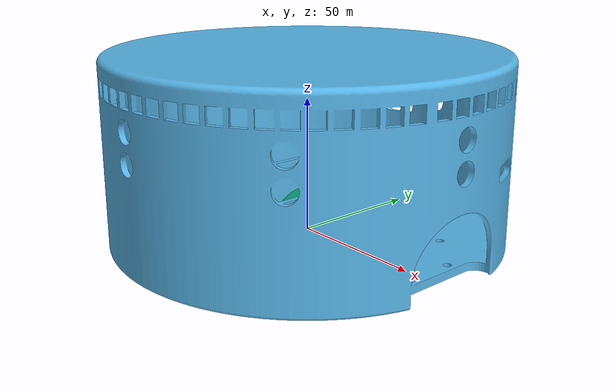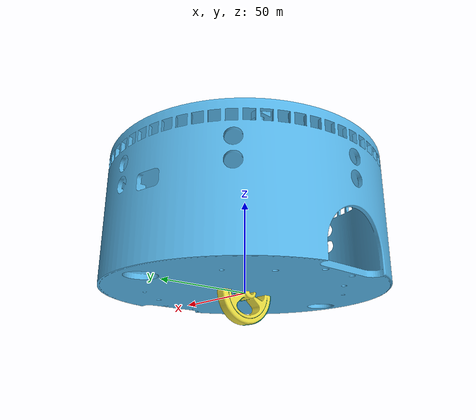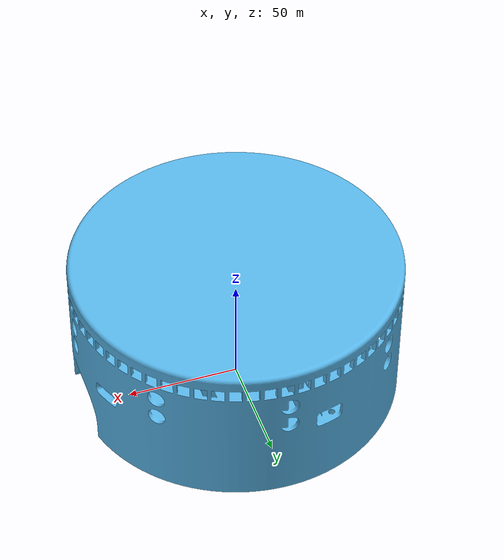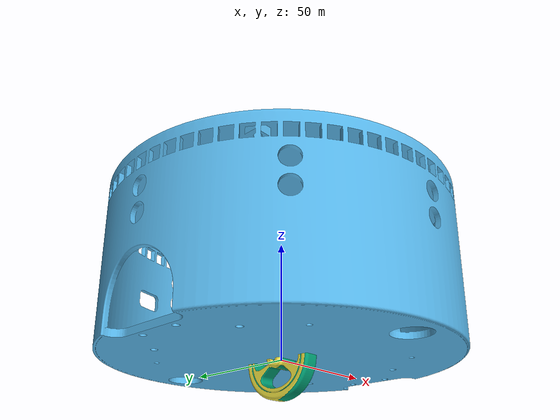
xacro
<?xml version="1.0"?>

<robot name="layka" xmlns:xacro="http://ros.org/wiki/xacro">

  <!-- Include Gazebo Parameters -->
  <xacro:include filename="$(find layka_description)/urdf/layka_ir_gazebo.xacro" />

  <!-- Include ros2_control Plugins -->
  <xacro:include filename="$(find layka_description)/urdf/layka_ir_control.xacro" />

  <link name="base_footprint"/>

  <link name="base_link">
    <visual>
      <origin xyz="0 0 -0.03285" rpy="0 0 0"/>
      <geometry>
          <mesh filename="$(find layka_description)/meshes/base_link.dae" />
      </geometry>
    </visual>

    <collision>
      <geometry>
          <cylinder length="0.0657" radius="0.0725"/>
      </geometry>
      <contact_coefficients mu="0" kp="1000.0" kd="1.0"/>
    </collision>

    <inertial>
      <origin xyz="0 0 0.016"/>
      <mass value="1.5" />
      <inertia ixx="0.01" ixy="0.0" ixz="0"
            iyy="0.01" iyz="0" izz="0.01" />
    </inertial>
  </link>

  <joint name="base_joint" type="fixed">
    <origin xyz="0 0 0.04245" rpy="0 0 0"/>
    <parent link="base_footprint"/>
    <child link="base_link"/>
  </joint>

   <link name="wheel_right_link">
    <visual>
      <origin xyz="0.016 0 0" rpy="0 -1.5708 0"/>
      <geometry>
          <mesh filename="$(find layka_description)/meshes/wheel_link.dae" />
      </geometry>
    </visual>

    <collision>
      <geometry>
          <cylinder radius="0.016" length="0.007"/>
      </geometry>
      <contact_coefficients mu="0" kp="1000.0" kd="1.0"/>
    </collision>

    <inertial>
      <mass value="1.0" />
      <inertia ixx="0.01" ixy="0.0" ixz="0"
            iyy="0.01" iyz="0" izz="0.01" />
    </inertial>
  </link>

  <joint name="wheel_right_joint" type="continuous">
    <origin xyz="0.0 -0.06925 -0.02645" rpy="1.57 0.0 0.0"/>
    <parent link="base_link"/>
    <child link="wheel_right_link"/>
    <axis xyz="0.0 0.0 1.0"/>
  </joint>

  <link name="wheel_left_link">
    <visual>
      <origin xyz="-0.016 0 0" rpy="0 1.5708 0"/>
      <geometry>
          <mesh filename="$(find layka_description)/meshes/wheel_link.dae" />
      </geometry>
    </visual>

    <collision>
      <geometry>
          <cylinder radius="0.016" length="0.007"/>
      </geometry>
      <contact_coefficients mu="0" kp="1000.0" kd="1.0"/>
    </collision>

    <inertial>
      <mass value="1.0" />
      <inertia ixx="0.01" ixy="0.0" ixz="0"
            iyy="0.01" iyz="0" izz="0.01" />
    </inertial>
  </link>

  <joint name="wheel_left_joint" type="continuous">
    <origin xyz="0.0 0.06925 -0.02645" rpy="1.57 0.0 0.0"/>
    <parent link="base_link"/>
    <child link="wheel_left_link"/>
    <axis xyz="0.0 0.0 1.0"/>
  </joint>

  <link name="caster_front_link">
    <visual>
      <geometry>
        <sphere radius="0.00635" />
      </geometry>
      <material name="white" />
    </visual>

    <collision>
      <origin/>
      <geometry>
        <sphere radius="0.00635" />
      </geometry>
      <contact_coefficients mu="0" kp="1000.0" kd="1.0"/>
    </collision>

    <inertial>
      <mass value="1.0" />
      <inertia ixx="0.01" ixy="0.0" ixz="0"
            iyy="0.01" iyz="0" izz="0.01" />
    </inertial>
  </link>

  <joint name="caster_front_joint" type="continuous">
    <origin xyz="0.06 0.0 -0.0361" rpy="0.0 0.0 0.0"/>
    <axis xyz="0 0 1" />
    <parent link="base_link"/>
    <child link="caster_front_link"/>
  </joint>

  <link name="caster_back_link">
    <visual>
      <geometry>
        <sphere radius="0.00635" />
      </geometry>
      <material name="white" />
    </visual>

    <collision>
      <origin/>
      <geometry>
        <sphere radius="0.00635" />
      </geometry>
      <contact_coefficients mu="0" kp="1000.0" kd="1.0"/>
    </collision>

    <inertial>
      <mass value="1.0" />
      <inertia ixx="0.01" ixy="0.0" ixz="0"
            iyy="0.01" iyz="0" izz="0.01" />
    </inertial>
  </link>

  <joint name="caster_back_joint" type="continuous">
    <origin xyz="-0.06 0.0 -0.0361" rpy="0.0 0.0 0.0"/>
    <axis xyz="0 0 1" />
    <parent link="base_link"/>
    <child link="caster_back_link"/>
  </joint>

<material name="white">
  <color rgba="1 1 1 1"/>
</material>

<material name="black">
  <color rgba="0 0 0 1"/>
</material>

<!-- Gazebo colors to links as upper defined colors are only visible in RVIZ-->

<gazebo reference="caster_front_link">
  <material>Gazebo/White</material>
</gazebo>

<gazebo reference="caster_back_link">
  <material>Gazebo/White</material>
</gazebo>

</robot>
